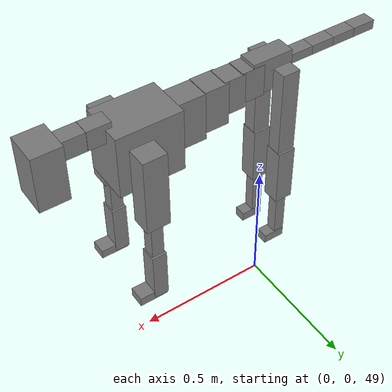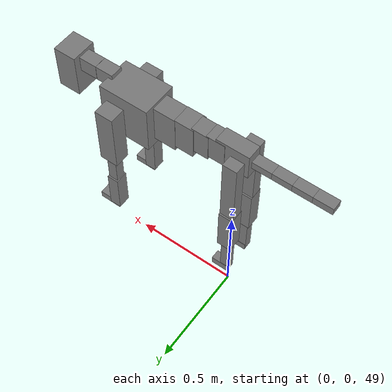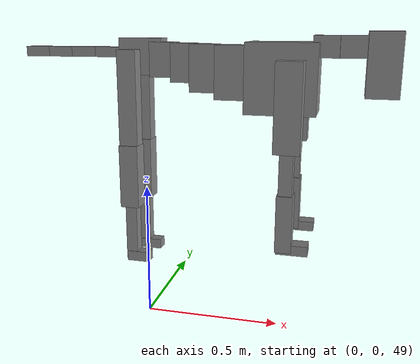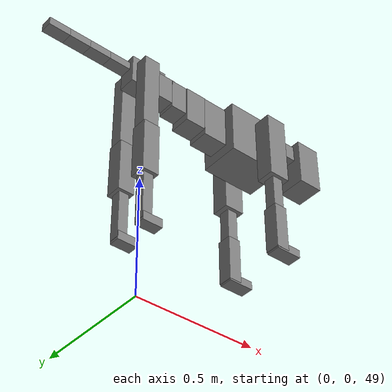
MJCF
<mujoco model="dog">

    <default>
        <joint armature="0.02" stiffness="1" damping="0.2" limited="true"/>
        <geom condim="3" friction="1 0.05 0.05" margin="0.01"/>
        <motor ctrllimited="true" ctrlrange="-1.0 1.0" forcelimited="true" gear="50"/>
    </default>

    <compiler inertiafromgeom="true" angle="radian"/>

    <option timestep="0.016" iterations="50" tolerance="1e-10" solver="Newton" jacobian="dense" cone="pyramidal"/>

    <size nconmax="20000" njmax="60000" nstack="5000000"/>
    <visual>
        <map force="0.1" zfar="30"/>
        <rgba haze="0.15 0.25 0.35 1"/>
        <quality shadowsize="2048"/>
        <global offwidth="800" offheight="800"/>
    </visual>

    <asset>
        <texture type="skybox" builtin="gradient" rgb1="0.3 0.5 0.7" rgb2="0 0 0" width="512" height="512"/>
        <texture name="texplane" type="2d" builtin="checker" rgb1=".2 .3 .4" rgb2=".1 0.15 0.2" width="512" height="512"
                 mark="cross" markrgb=".8 .8 .8"/>
        <texture name="texgeom" type="cube" builtin="flat" mark="cross" width="127" height="1278" rgb1="0.8 0.6 0.4"
                 rgb2="0.8 0.6 0.4" markrgb="1 1 1" random="0.01"/>

        <material name="matplane" reflectance="0.3" texture="texplane" texrepeat="1 1" texuniform="true"/>
        <material name="matgeom" texture="texgeom" texuniform="true" rgba="0.8 0.6 .4 1"/>
    </asset>

    <worldbody>
        <geom name="floor" pos="0 0 0" size="0 0 .25" type="plane" material="matplane" condim="3"/>

        <light directional="false" diffuse=".2 .2 .2" specular="0 0 0" pos="0 0 5" dir="0 0 -1" castshadow="false"/>
        <light mode="targetbodycom" target="torso" directional="false" diffuse=".8 .8 .8" specular="0.3 0.3 0.3"
               pos="0 0 4.0" dir="0 0 -1"/>

        <body name="root" pos="0 0 50">
            <freejoint name="root_1"/>
            <geom type="box" pos="0 0 -0.02" size="0.0774  0.0358  0.063" density="2030"/>

            <body name="spine1" pos="0.054 0 0">
                <joint name="spine1_y" axis="0 1 0" range="0 0.7" limited="true"/>
                <geom type="box" pos="0.02375 0 -0.03" size="0.04375  0.0375  0.05985" density="2030"/>

                <body name="spine2" pos="0.0612 0 0">
                    <joint name="spine2_y" axis="0 1 0" range="-0.15 0.15" limited="true"/>
                    <geom type="box" pos="0.03555  0  -0.04" size="0.04055  0.039  0.06615" density="2030"/>

                    <body name="spine3" pos="0.0730 0 0">
                        <joint name="spine3_y" axis="0 1 0" range="-0.15 0.15" limited="true"/>
                        <geom type="box" pos="0.03555  0  -0.057" size="0.04555  0.0445  0.081" density="2030"/>

                        <body name="spine4" pos="0.0780 0 0">
                            <joint name="spine4_y" axis="0 1 0" range="-0.15 0.15" limited="true"/>
                            <geom type="box" pos="0.05265  0  -0.07" size="0.05265  0.045  0.09135" density="2030"/>

                            <body name="torso" pos="0.1082 0 0">
                                <joint name="torso_y" axis="0 1 0" range="-0.15 0.15" limited="true"/>
                                <geom type="box" pos="0.11925  0  -0.085" size="0.11925  0.085  0.11745"
                                      density="2030"/>

                                <body name="neck1" pos="0.2160  0   0.0180">
                                    <joint name="neck1_y" axis="0 1 0" range="-1.2  -1" limited="true"/>
                                    <geom type="box" pos="0.0423  0  0" size="0.0423  0.03  0.036" density="2325"/>

                                    <body name="neck2" pos="0.0853  0  0">
                                        <joint name="neck2_y" axis="0 1 0" range="0.1  0" limited="true"/>
                                        <geom type="box" pos="0.0423  0  0" size="0.0423  0.03  0.036" density="2325"/>

                                        <body name="head" pos="0.0853  0  0">
                                            <joint name="head_y" axis="0 1 0" range="-0.3  -0.2" limited="true"/>
                                            <geom type="box" pos="0.0531  0  -0.055" size="0.0531  0.06  0.1044"
                                                  density="4030"/>

                                        </body>
                                    </body>
                                </body>

                                <body name="front_shoulder" pos="0.156  0   -0.0480">
                                    <joint name="front_shoulder_y" axis="0 1 0" range="-1 1.5" limited="true"/>
                                    <geom type="box" pos="0 0.13 -0.1201" size="0.0436  0.0373  0.1467" density="1158"/>
                                    <geom type="box" pos="0 -0.13 -0.1201" size="0.0436  0.0373  0.1467"
                                          density="1158"/>

                                    <body name="front_elbow" pos="0  0  -0.2401">
                                        <joint name="front_elbow_y" axis="0 1 0" range="-2 0" limited="true"/>
                                        <geom type="box" pos="0 0.13 -0.0892" size="0.0226  0.0231  0.0892"
                                              density="1081"/>
                                        <geom type="box" pos="0 -0.13 -0.0892" size="0.0226  0.0231  0.0892"
                                              density="1081"/>

                                        <body name="front_wrist" pos="0  0  -0.1784">
                                            <joint name="front_wrist_y" axis="0 1 0" range="-0.2 0" limited="true"/>
                                            <geom type="box" pos="0 0.13 -0.0843" size="0.0272  0.0302  0.0974"
                                                  density="1664"/>
                                            <geom type="box" pos="0 -0.13 -0.0843" size="0.0272  0.0302  0.0974"
                                                  density="1664"/>

                                            <body name="front_finger_end" pos="0  0  -0.1686">
                                                <joint name="front_finger_y" axis="0 1 0" range="-0.4 1"
                                                       limited="true"/>
                                                <geom type="box" pos="0.0290  0.13  -0.0025"
                                                      size="0.0531  0.0290  0.0175" density="1515"/>
                                                <geom type="box" pos="0.0290  -0.13  -0.0025"
                                                      size="0.0531  0.0290  0.0175" density="1515"/>

                                            </body>

                                        </body>
                                    </body>
                                </body>

                            </body>
                        </body>
                    </body>
                </body>
            </body>

            <body name="back_hip" pos="-0.03 0 -0.018">
                <joint name="back_hip_y" axis="0 1 0" range="-1.5 0.3" limited="true"/>
                <geom type="box" pos="0 0.07 -0.1614" size="0.0333  0.0262  0.1842" density="1154"/>
                <geom type="box" pos="0 -0.07 -0.1614" size="0.0333  0.0262  0.1842" density="1154"/>

                <body name="back_knee" pos="0  0  -0.3228">
                    <joint name="back_knee_y" axis="0 1 0" range="0 2.8" limited="true"/>
                    <geom type="box" pos="0 0.07 -0.0969" size="0.0339  0.0334  0.1125" density="1227"/>
                    <geom type="box" pos="0 -0.07 -0.0969" size="0.0339  0.0334  0.1125" density="1227"/>

                    <body name="back_ankle" pos="0  0  -0.1938">
                        <joint name="back_ankle_y" axis="0 1 0" range="-2.2 0" limited="true"/>
                        <geom type="box" pos="0 0.07 -0.1018" size="0.0206  0.0206  0.1131" density="1284"/>
                        <geom type="box" pos="0 -0.07 -0.1018" size="0.0206  0.0206  0.1131" density="1284"/>

                        <body name="back_toe_end" pos="0  0  -0.2036">
                            <joint name="back_toe_y" axis="0 1 0" range="-0.4 1" limited="true"/>
                            <geom type="box" pos="0.0224  0.07  -0.0033" size="0.0411  0.0224  0.0183" density="1515"/>
                            <geom type="box" pos="0.0224  -0.07  -0.0033" size="0.0411  0.0224  0.0183" density="1515"/>

                        </body>
                    </body>
                </body>
            </body>

            <body name="tail1" pos="-0.074 0 -0.006">
                <joint name="tail1_y" axis="0 1 0" range="-0.2 0.2" limited="true"/>
                <geom type="box" pos="-0.0536  0  0" size="0.045  0.025  0.0175" density="1587"/>

                <body name="tail2" pos="-0.09 0 0">
                    <joint name="tail2_y" axis="0 1 0" range="-0.2 0.2" limited="true"/>
                    <geom type="box" pos="-0.0536  0  0" size="0.045  0.025  0.0175" density="1587"/>

                    <body name="tail3" pos="-0.09 0 0">
                        <joint name="tail3_y" axis="0 1 0" range="-0.2 0.2" limited="true"/>
                        <geom type="box" pos="-0.0536  0  0" size="0.045  0.025  0.0175" density="1587"/>

                        <body name="tail4" pos="-0.09 0 0">
                            <joint name="tail4_y" axis="0 1 0" range="-0.2 0.2" limited="true"/>
                            <geom type="box" pos="-0.0536  0  0" size="0.045  0.025  0.0175" density="1587"/>

                        </body>
                    </body>
                </body>
            </body>
        </body>
    </worldbody>

    <actuator>
        <motor joint="spine1_y" forcerange="-150 150     "/>
        <motor joint="spine2_y" forcerange="-150 150     "/>
        <motor joint="spine3_y" forcerange="-150 150     "/>
        <motor joint="spine4_y" forcerange="-150 150     "/>
        <motor joint="torso_y" forcerange="-150 150     "/>
        <motor joint="neck1_y" forcerange="-100 100       "/>
        <motor joint="neck2_y" forcerange="-100 100       "/>
        <motor joint="head_y" forcerange="-150 150       "/>
        <motor joint="front_shoulder_y" forcerange="-196.17 152.32"/>
        <motor joint="front_elbow_y" forcerange="-154.37 113.45"/>
        <motor joint="front_wrist_y" forcerange="-118.96 122.71"/>
        <motor joint="front_finger_y" forcerange="-61.30 53.14"/>
        <motor joint="back_hip_y" forcerange="-318.88 229.86"/>
        <motor joint="back_knee_y" forcerange="-350.75 335.61"/>
        <motor joint="back_angle_y" forcerange="-55.70 174.37"/>
        <motor joint="back_toe_y" forcerange="-74.40 24.88"/>
        <motor joint="tail1_y" forcerange="-50 50     "/>
        <motor joint="tail2_y" forcerange="-50 50     "/>
        <motor joint="tail3_y" forcerange="-50 50     "/>
        <motor joint="tail4_y" forcerange="-50 50     "/>
    </actuator>
</mujoco>
